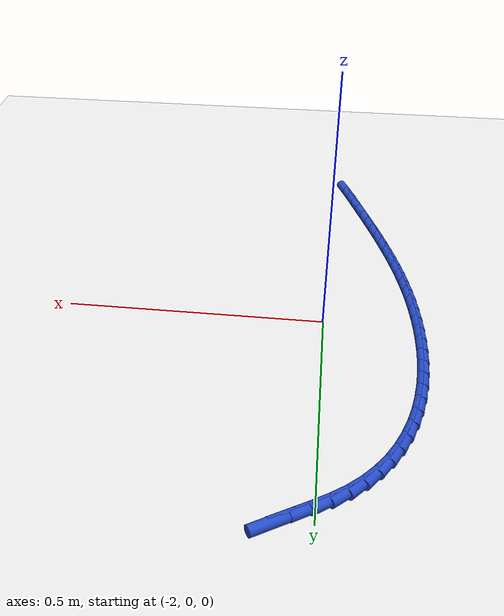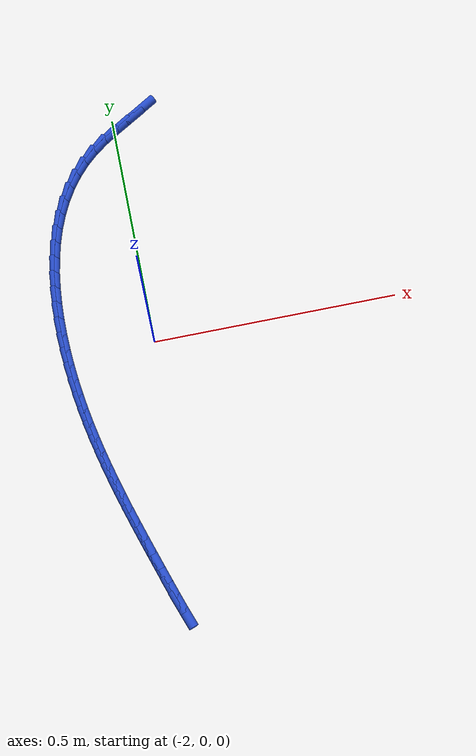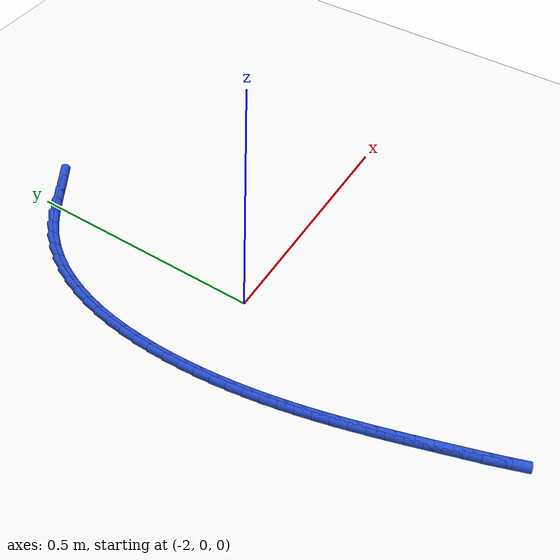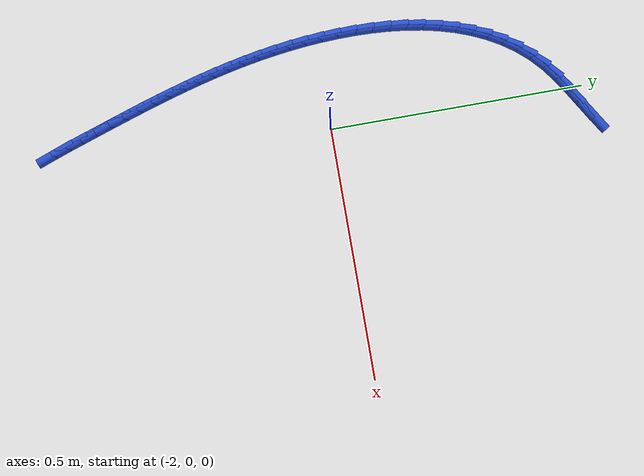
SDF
<sdf version="1.6">
 <world name="default">
  <model name="ground_plane">
   <static>1</static>
   <link name="link">
    <collision name="collision">
     <geometry><plane><normal>0 0 1</normal><size>100 100</size></plane></geometry>
     <surface><friction><ode><mu>100</mu><mu2>50</mu2></ode></friction></surface>
    </collision>
    <visual name="visual">
     <cast_shadows>0</cast_shadows>
     <geometry><plane><normal>0 0 1</normal><size>100 100</size></plane></geometry>
     <material>
      <script><uri>file://media/materials/scripts/gazebo.material</uri><name>Gazebo/WhiteGlow</name></script>
     </material>
    </visual>
   </link>
  </model>
  <model name="line">
   <link name="link_91">
    <pose>-1.9392607241104287 0.5096558498951793 0.01 0 1.57 0.5631530066413633</pose>
    <collision name="collision">
     <geometry><cylinder><radius>0.01</radius><length>0.08</length></cylinder></geometry>
    </collision>
    <visual name="visual">
     <material>
      <script><name>Gazebo/Blue</name><uri>file://media/materials/scripts/gazebo.material</uri></script>
     </material>
     <geometry><cylinder><radius>0.01</radius><length>0.08</length></cylinder></geometry>
    </visual>
   </link>
   <link name="link_92">
    <pose>-1.9673667122490517 0.4919111175604489 0.01 0 1.57 0.5525475562046848</pose>
    <collision name="collision">
     <geometry><cylinder><radius>0.01</radius><length>0.08</length></cylinder></geometry>
    </collision>
    <visual name="visual">
     <material>
      <script><name>Gazebo/Blue</name><uri>file://media/materials/scripts/gazebo.material</uri></script>
     </material>
     <geometry><cylinder><radius>0.01</radius><length>0.08</length></cylinder></geometry>
    </visual>
   </link>
   <link name="link_93">
    <pose>-1.9961278273790883 0.4741765571941509 0.01 0 1.57 0.5816521463458214</pose>
    <collision name="collision">
     <geometry><cylinder><radius>0.01</radius><length>0.08</length></cylinder></geometry>
    </collision>
    <visual name="visual">
     <material>
      <script><name>Gazebo/Blue</name><uri>file://media/materials/scripts/gazebo.material</uri></script>
     </material>
     <geometry><cylinder><radius>0.01</radius><length>0.08</length></cylinder></geometry>
    </visual>
   </link>
   <link name="link_94">
    <pose>-2.0242886404957936 0.45565991205436124 0.01 0 1.57 0.652223257671077</pose>
    <collision name="collision">
     <geometry><cylinder><radius>0.01</radius><length>0.08</length></cylinder></geometry>
    </collision>
    <visual name="visual">
     <material>
      <script><name>Gazebo/Blue</name><uri>file://media/materials/scripts/gazebo.material</uri></script>
     </material>
     <geometry><cylinder><radius>0.01</radius><length>0.08</length></cylinder></geometry>
    </visual>
   </link>
   <link name="link_95">
    <pose>-2.050594612133444 0.4355695562680999 0.01 0 1.57 0.7559224179567458</pose>
    <collision name="collision">
     <geometry><cylinder><radius>0.01</radius><length>0.08</length></cylinder></geometry>
    </collision>
    <visual name="visual">
     <material>
      <script><name>Gazebo/Blue</name><uri>file://media/materials/scripts/gazebo.material</uri></script>
     </material>
     <geometry><cylinder><radius>0.01</radius><length>0.08</length></cylinder></geometry>
    </visual>
   </link>
   <link name="link_96">
    <pose>-2.074147026678377 0.413366217387335 0.01 0 1.57 0.8612343608549565</pose>
    <collision name="collision">
     <geometry><cylinder><radius>0.01</radius><length>0.08</length></cylinder></geometry>
    </collision>
    <visual name="visual">
     <material>
      <script><name>Gazebo/Blue</name><uri>file://media/materials/scripts/gazebo.material</uri></script>
     </material>
     <geometry><cylinder><radius>0.01</radius><length>0.08</length></cylinder></geometry>
    </visual>
   </link>
   <link name="link_97">
    <pose>-2.0949452351403557 0.38914753976131433 0.01 0 1.57 0.961188883808443</pose>
    <collision name="collision">
     <geometry><cylinder><radius>0.01</radius><length>0.08</length></cylinder></geometry>
    </collision>
    <visual name="visual">
     <material>
      <script><name>Gazebo/Blue</name><uri>file://media/materials/scripts/gazebo.material</uri></script>
     </material>
     <geometry><cylinder><radius>0.01</radius><length>0.08</length></cylinder></geometry>
    </visual>
   </link>
   <link name="link_98">
    <pose>-2.113128083714955 0.36311009895960417 0.01 0 1.57 1.0543571238872087</pose>
    <collision name="collision">
     <geometry><cylinder><radius>0.01</radius><length>0.08</length></cylinder></geometry>
    </collision>
    <visual name="visual">
     <material>
      <script><name>Gazebo/Blue</name><uri>file://media/materials/scripts/gazebo.material</uri></script>
     </material>
     <geometry><cylinder><radius>0.01</radius><length>0.08</length></cylinder></geometry>
    </visual>
   </link>
   <link name="link_99">
    <pose>-2.1288344185977484 0.33545047055177135 0.01 0 1.57 1.139956813241667</pose>
    <collision name="collision">
     <geometry><cylinder><radius>0.01</radius><length>0.08</length></cylinder></geometry>
    </collision>
    <visual name="visual">
     <material>
      <script><name>Gazebo/Blue</name><uri>file://media/materials/scripts/gazebo.material</uri></script>
     </material>
     <geometry><cylinder><radius>0.01</radius><length>0.08</length></cylinder></geometry>
    </visual>
   </link>
   <link name="link_100">
    <pose>-2.142203085984309 0.30636523010738126 0.01 0 1.57 1.2177644548588786</pose>
    <collision name="collision">
     <geometry><cylinder><radius>0.01</radius><length>0.08</length></cylinder></geometry>
    </collision>
    <visual name="visual">
     <material>
      <script><name>Gazebo/Blue</name><uri>file://media/materials/scripts/gazebo.material</uri></script>
     </material>
     <geometry><cylinder><radius>0.01</radius><length>0.08</length></cylinder></geometry>
    </visual>
   </link>
   <link name="link_101">
    <pose>-2.15337293207021 0.276050953196001 0.01 0 1.57 1.2879705667836343</pose>
    <collision name="collision">
     <geometry><cylinder><radius>0.01</radius><length>0.08</length></cylinder></geometry>
    </collision>
    <visual name="visual">
     <material>
      <script><name>Gazebo/Blue</name><uri>file://media/materials/scripts/gazebo.material</uri></script>
     </material>
     <geometry><cylinder><radius>0.01</radius><length>0.08</length></cylinder></geometry>
    </visual>
   </link>
   <link name="link_102">
    <pose>-2.1624828030510255 0.2447042153871959 0.01 0 1.57 1.3510306404543082</pose>
    <collision name="collision">
     <geometry><cylinder><radius>0.01</radius><length>0.08</length></cylinder></geometry>
    </collision>
    <visual name="visual">
     <material>
      <script><name>Gazebo/Blue</name><uri>file://media/materials/scripts/gazebo.material</uri></script>
     </material>
     <geometry><cylinder><radius>0.01</radius><length>0.08</length></cylinder></geometry>
    </visual>
   </link>
   <link name="link_103">
    <pose>-2.169671545122329 0.212521592250533 0.01 0 1.57 1.4075413924501525</pose>
    <collision name="collision">
     <geometry><cylinder><radius>0.01</radius><length>0.08</length></cylinder></geometry>
    </collision>
    <visual name="visual">
     <material>
      <script><name>Gazebo/Blue</name><uri>file://media/materials/scripts/gazebo.material</uri></script>
     </material>
     <geometry><cylinder><radius>0.01</radius><length>0.08</length></cylinder></geometry>
    </visual>
   </link>
   <link name="link_104">
    <pose>-2.1750780044796953 0.17969965935557788 0.01 0 1.57 1.4581514837865683</pose>
    <collision name="collision">
     <geometry><cylinder><radius>0.01</radius><length>0.08</length></cylinder></geometry>
    </collision>
    <visual name="visual">
     <material>
      <script><name>Gazebo/Blue</name><uri>file://media/materials/scripts/gazebo.material</uri></script>
     </material>
     <geometry><cylinder><radius>0.01</radius><length>0.08</length></cylinder></geometry>
    </visual>
   </link>
   <link name="link_105">
    <pose>-2.178841027318696 0.14643499227189735 0.01 0 1.57 1.5035039663464123</pose>
    <collision name="collision">
     <geometry><cylinder><radius>0.01</radius><length>0.08</length></cylinder></geometry>
    </collision>
    <visual name="visual">
     <material>
      <script><name>Gazebo/Blue</name><uri>file://media/materials/scripts/gazebo.material</uri></script>
     </material>
     <geometry><cylinder><radius>0.01</radius><length>0.08</length></cylinder></geometry>
    </visual>
   </link>
   <link name="link_106">
    <pose>-2.1810994598349067 0.11292416656905696 0.01 0 1.57 1.544203148204814</pose>
    <collision name="collision">
     <geometry><cylinder><radius>0.01</radius><length>0.08</length></cylinder></geometry>
    </collision>
    <visual name="visual">
     <material>
      <script><name>Gazebo/Blue</name><uri>file://media/materials/scripts/gazebo.material</uri></script>
     </material>
     <geometry><cylinder><radius>0.01</radius><length>0.08</length></cylinder></geometry>
    </visual>
   </link>
   <link name="link_107">
    <pose>-2.181992148223899 0.07936375781662375 0.01 0 1.57 -1.5607944043440976</pose>
    <collision name="collision">
     <geometry><cylinder><radius>0.01</radius><length>0.08</length></cylinder></geometry>
    </collision>
    <visual name="visual">
     <material>
      <script><name>Gazebo/Blue</name><uri>file://media/materials/scripts/gazebo.material</uri></script>
     </material>
     <geometry><cylinder><radius>0.01</radius><length>0.08</length></cylinder></geometry>
    </visual>
   </link>
   <link name="link_108">
    <pose>-2.1816579386812496 0.04595034158416315 0.01 0 1.57 -1.527807609885216</pose>
    <collision name="collision">
     <geometry><cylinder><radius>0.01</radius><length>0.08</length></cylinder></geometry>
    </collision>
    <visual name="visual">
     <material>
      <script><name>Gazebo/Blue</name><uri>file://media/materials/scripts/gazebo.material</uri></script>
     </material>
     <geometry><cylinder><radius>0.01</radius><length>0.08</length></cylinder></geometry>
    </visual>
   </link>
   <link name="link_109">
    <pose>-2.1802353967121095 0.012879674130392685 0.01 0 1.57 -1.4973605223282276</pose>
    <collision name="collision">
     <geometry><cylinder><radius>0.01</radius><length>0.08</length></cylinder></geometry>
    </collision>
    <visual name="visual">
     <material>
      <script><name>Gazebo/Blue</name><uri>file://media/materials/scripts/gazebo.material</uri></script>
     </material>
     <geometry><cylinder><radius>0.01</radius><length>0.08</length></cylinder></geometry>
    </visual>
   </link>
   <link name="link_110">
    <pose>-2.1778363190986862 -0.019730623853465357 0.01 0 1.57 -1.468207060463853</pose>
    <collision name="collision">
     <geometry><cylinder><radius>0.01</radius><length>0.08</length></cylinder></geometry>
    </collision>
    <visual name="visual">
     <material>
      <script><name>Gazebo/Blue</name><uri>file://media/materials/scripts/gazebo.material</uri></script>
     </material>
     <geometry><cylinder><radius>0.01</radius><length>0.08</length></cylinder></geometry>
    </visual>
   </link>
   <link name="link_111">
    <pose>-2.1745239938024135 -0.05190452469301958 0.01 0 1.57 -1.4403929128161543</pose>
    <collision name="collision">
     <geometry><cylinder><radius>0.01</radius><length>0.08</length></cylinder></geometry>
    </collision>
    <visual name="visual">
     <material>
      <script><name>Gazebo/Blue</name><uri>file://media/materials/scripts/gazebo.material</uri></script>
     </material>
     <geometry><cylinder><radius>0.01</radius><length>0.08</length></cylinder></geometry>
    </visual>
   </link>
   <link name="link_112">
    <pose>-2.1703565922394983 -0.08368093546313399 0.01 0 1.57 -1.414082754827561</pose>
    <collision name="collision">
     <geometry><cylinder><radius>0.01</radius><length>0.08</length></cylinder></geometry>
    </collision>
    <visual name="visual">
     <material>
      <script><name>Gazebo/Blue</name><uri>file://media/materials/scripts/gazebo.material</uri></script>
     </material>
     <geometry><cylinder><radius>0.01</radius><length>0.08</length></cylinder></geometry>
    </visual>
   </link>
   <link name="link_113">
    <pose>-2.1653922858261443 -0.11509876323867207 0.01 0 1.57 -1.389423291354287</pose>
    <collision name="collision">
     <geometry><cylinder><radius>0.01</radius><length>0.08</length></cylinder></geometry>
    </collision>
    <visual name="visual">
     <material>
      <script><name>Gazebo/Blue</name><uri>file://media/materials/scripts/gazebo.material</uri></script>
     </material>
     <geometry><cylinder><radius>0.01</radius><length>0.08</length></cylinder></geometry>
    </visual>
   </link>
   <link name="link_114">
    <pose>-2.159689245978557 -0.1461969150944981 0.01 0 1.57 -1.3665421297323093</pose>
    <collision name="collision">
     <geometry><cylinder><radius>0.01</radius><length>0.08</length></cylinder></geometry>
    </collision>
    <visual name="visual">
     <material>
      <script><name>Gazebo/Blue</name><uri>file://media/materials/scripts/gazebo.material</uri></script>
     </material>
     <geometry><cylinder><radius>0.01</radius><length>0.08</length></cylinder></geometry>
    </visual>
   </link>
   <link name="link_115">
    <pose>-2.1533056441129417 -0.1770142981054741 0.01 0 1.57 -1.345547446504073</pose>
    <collision name="collision">
     <geometry><cylinder><radius>0.01</radius><length>0.08</length></cylinder></geometry>
    </collision>
    <visual name="visual">
     <material>
      <script><name>Gazebo/Blue</name><uri>file://media/materials/scripts/gazebo.material</uri></script>
     </material>
     <geometry><cylinder><radius>0.01</radius><length>0.08</length></cylinder></geometry>
    </visual>
   </link>
   <link name="link_116">
    <pose>-2.1462996516455037 -0.2075898193464643 0.01 0 1.57 -1.3265283376074632</pose>
    <collision name="collision">
     <geometry><cylinder><radius>0.01</radius><length>0.08</length></cylinder></geometry>
    </collision>
    <visual name="visual">
     <material>
      <script><name>Gazebo/Blue</name><uri>file://media/materials/scripts/gazebo.material</uri></script>
     </material>
     <geometry><cylinder><radius>0.01</radius><length>0.08</length></cylinder></geometry>
    </visual>
   </link>
   <link name="link_117">
    <pose>-2.1387294399924492 -0.23796238589233246 0.01 0 1.57 -1.3095557095738821</pose>
    <collision name="collision">
     <geometry><cylinder><radius>0.01</radius><length>0.08</length></cylinder></geometry>
    </collision>
    <visual name="visual">
     <material>
      <script><name>Gazebo/Blue</name><uri>file://media/materials/scripts/gazebo.material</uri></script>
     </material>
     <geometry><cylinder><radius>0.01</radius><length>0.08</length></cylinder></geometry>
    </visual>
   </link>
   <link name="link_118">
    <pose>-2.130653180569983 -0.2681709048179426 0.01 0 1.57 -1.2946835558881822</pose>
    <collision name="collision">
     <geometry><cylinder><radius>0.01</radius><length>0.08</length></cylinder></geometry>
    </collision>
    <visual name="visual">
     <material>
      <script><name>Gazebo/Blue</name><uri>file://media/materials/scripts/gazebo.material</uri></script>
     </material>
     <geometry><cylinder><radius>0.01</radius><length>0.08</length></cylinder></geometry>
    </visual>
   </link>
   <link name="link_119">
    <pose>-2.1221290447943093 -0.2982542831981568 0.01 0 1.57 -1.281950465273639</pose>
    <collision name="collision">
     <geometry><cylinder><radius>0.01</radius><length>0.08</length></cylinder></geometry>
    </collision>
    <visual name="visual">
     <material>
      <script><name>Gazebo/Blue</name><uri>file://media/materials/scripts/gazebo.material</uri></script>
     </material>
     <geometry><cylinder><radius>0.01</radius><length>0.08</length></cylinder></geometry>
    </visual>
   </link>
   <link name="link_120">
    <pose>-2.113215204081635 -0.32825142810783936 0.01 0 1.57 -1.271381223088844</pose>
    <collision name="collision">
     <geometry><cylinder><radius>0.01</radius><length>0.08</length></cylinder></geometry>
    </collision>
    <visual name="visual">
     <material>
      <script><name>Gazebo/Blue</name><uri>file://media/materials/scripts/gazebo.material</uri></script>
     </material>
     <geometry><cylinder><radius>0.01</radius><length>0.08</length></cylinder></geometry>
    </visual>
   </link>
   <link name="link_121">
    <pose>-2.1039698298481646 -0.3582012466218538 0.01 0 1.57 -1.2629883887928968</pose>
    <collision name="collision">
     <geometry><cylinder><radius>0.01</radius><length>0.08</length></cylinder></geometry>
    </collision>
    <visual name="visual">
     <material>
      <script><name>Gazebo/Blue</name><uri>file://media/materials/scripts/gazebo.material</uri></script>
     </material>
     <geometry><cylinder><radius>0.01</radius><length>0.08</length></cylinder></geometry>
    </visual>
   </link>
   <link name="link_122">
    <pose>-2.0944510935101035 -0.38814264581506464 0.01 0 1.57 -1.256773757567612</pose>
    <collision name="collision">
     <geometry><cylinder><radius>0.01</radius><length>0.08</length></cylinder></geometry>
    </collision>
    <visual name="visual">
     <material>
      <script><name>Gazebo/Blue</name><uri>file://media/materials/scripts/gazebo.material</uri></script>
     </material>
     <geometry><cylinder><radius>0.01</radius><length>0.08</length></cylinder></geometry>
    </visual>
   </link>
   <link name="link_123">
    <pose>-2.0847171664836575 -0.4181145327623335 0.01 0 1.57 -1.2527296396304726</pose>
    <collision name="collision">
     <geometry><cylinder><radius>0.01</radius><length>0.08</length></cylinder></geometry>
    </collision>
    <visual name="visual">
     <material>
      <script><name>Gazebo/Blue</name><uri>file://media/materials/scripts/gazebo.material</uri></script>
     </material>
     <geometry><cylinder><radius>0.01</radius><length>0.08</length></cylinder></geometry>
    </visual>
   </link>
   <link name="link_124">
    <pose>-2.074826220185031 -0.44815581453852493 0.01 0 1.57 -1.2508322143176127</pose>
    <collision name="collision">
     <geometry><cylinder><radius>0.01</radius><length>0.08</length></cylinder></geometry>
    </collision>
    <visual name="visual">
     <material>
      <script><name>Gazebo/Blue</name><uri>file://media/materials/scripts/gazebo.material</uri></script>
     </material>
     <geometry><cylinder><radius>0.01</radius><length>0.08</length></cylinder></geometry>
    </visual>
   </link>
   <link name="link_125">
    <pose>-2.0648362208648 -0.4783052398352352 0.01 0 1.57 -1.2482608691352879</pose>
    <collision name="collision">
     <geometry><cylinder><radius>0.01</radius><length>0.08</length></cylinder></geometry>
    </collision>
    <visual name="visual">
     <material>
      <script><name>Gazebo/Blue</name><uri>file://media/materials/scripts/gazebo.material</uri></script>
     </material>
     <geometry><cylinder><radius>0.01</radius><length>0.08</length></cylinder></geometry>
    </visual>
   </link>
   <link name="link_126">
    <pose>-2.0547303213794006 -0.5085438030808241 0.01 0 1.57 -1.2380661019665866</pose>
    <collision name="collision">
     <geometry><cylinder><radius>0.01</radius><length>0.08</length></cylinder></geometry>
    </collision>
    <visual name="visual">
     <material>
      <script><name>Gazebo/Blue</name><uri>file://media/materials/scripts/gazebo.material</uri></script>
     </material>
     <geometry><cylinder><radius>0.01</radius><length>0.08</length></cylinder></geometry>
    </visual>
   </link>
   <link name="link_127">
    <pose>-2.044305864750978 -0.538709057676739 0.01 0 1.57 -1.2191185904850663</pose>
    <collision name="collision">
     <geometry><cylinder><radius>0.01</radius><length>0.08</length></cylinder></geometry>
    </collision>
    <visual name="visual">
     <material>
      <script><name>Gazebo/Blue</name><uri>file://media/materials/scripts/gazebo.material</uri></script>
     </material>
     <geometry><cylinder><radius>0.01</radius><length>0.08</length></cylinder></geometry>
    </visual>
   </link>
  </model>
 </world>
</sdf>
